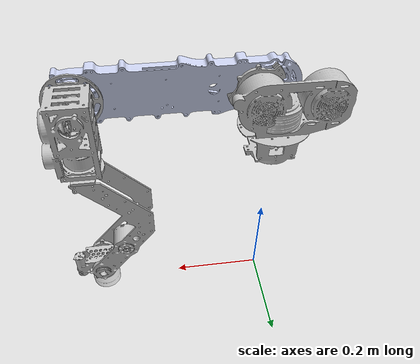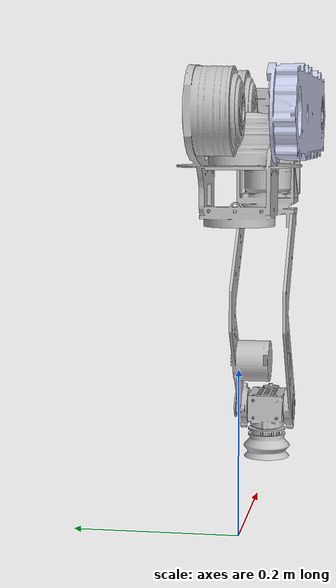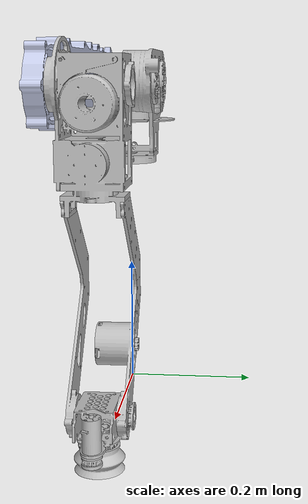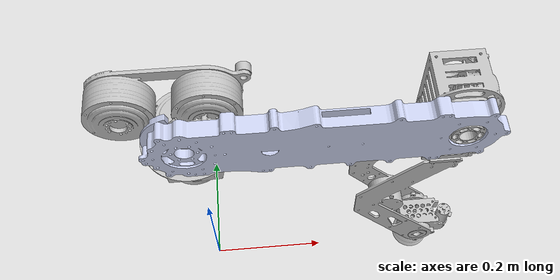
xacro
<?xml version="1.0"?>
<robot xmlns:xacro="http://www.ros.org/wiki/xacro" name="ARV_V1_MODEL">
    <xacro:arg name="initial_positions_file" default="initial_positions.yaml" />

    <!-- Import ARV_V1_MODEL urdf file -->
    <xacro:include filename="$(find ARV_V1_MODEL)/urdf/ARV_V1_MODEL.urdf" />

    <!-- Import control_xacro -->
    <xacro:include filename="ARV_V1_MODEL.ros2_control.xacro" />

    <!-- ros2_control 标签（使用 mock 硬件） -->
    <xacro:ARV_V1_MODEL_ros2_control name="FakeSystem" initial_positions_file="$(arg initial_positions_file)"/>

</robot>

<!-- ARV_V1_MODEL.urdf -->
<robot
  name="ARV_V1_MODEL">
  <link
    name="base_link">
    <inertial>
      <origin
        xyz="4.06405754959603E-05 3.96062265211095E-05 -0.159587611333419"
        rpy="0 0 0" />
      <mass
        value="0.349525984991482" />
      <inertia
        ixx="0.000258629195167638"
        ixy="-5.10875001154551E-10"
        ixz="-9.72936642265161E-09"
        iyy="0.000258276357567582"
        iyz="-1.14928164144097E-08"
        izz="0.000395519919318191" />
    </inertial>
    <visual>
      <origin
        xyz="0 0 0"
        rpy="0 0 0" />
      <geometry>
        <mesh
          filename="package://ARV_V1_MODEL/meshes/base_link.STL" />
      </geometry>
      <material
        name="">
        <color
          rgba="0.752941176470588 0.752941176470588 0.752941176470588 1" />
      </material>
    </visual>
    <collision>
      <origin
        xyz="0 0 0"
        rpy="0 0 0" />
      <geometry>
        <mesh
          filename="package://ARV_V1_MODEL/meshes/base_link.STL" />
      </geometry>
    </collision>
  </link>
  <link
    name="link1_double8009">
    <inertial>
      <origin
        xyz="-0.0154999931131982 -0.0261644185287386 -0.00790164285412044"
        rpy="0 0 0" />
      <mass
        value="1.22525961510696" />
      <inertia
        ixx="0.00126118311285525"
        ixy="-9.13199961592521E-06"
        ixz="-4.1718719896748E-07"
        iyy="0.00132467695230876"
        iyz="-1.19448129551972E-06"
        izz="0.00217005077700242" />
    </inertial>
    <visual>
      <origin
        xyz="0.03215 0 0"
        rpy="0 0 0" />
      <geometry>
        <mesh
          filename="package://ARV_V1_MODEL/meshes/link1_double8009.STL" />
      </geometry>
      <material
        name="">
        <color
          rgba="0.752941176470588 0.752941176470588 0.752941176470588 1" />
      </material>
    </visual>
    <collision>
      <origin
        xyz="0.03215 0 0"
        rpy="0 0 0" />
      <geometry>
        <mesh
          filename="package://ARV_V1_MODEL/meshes/link1_double8009.STL" />
      </geometry>
    </collision>
  </link>
  <joint
    name="joint_1"
    type="revolute">
    <origin
      xyz="0 0 0"
      rpy="1.5708 0 0" />
    <parent
      link="base_link" />
    <child
      link="link1_double8009" />
    <axis
      xyz="0 1 0" />
    <limit
      lower="-3.14"
      upper="3.14"
      effort="20"
      velocity="10.47" />
    <dynamics
      damping="0.1"
      friction="0.1" />
    <safety_controller
      soft_upper_limit="3.14"
      soft_lower_limit="-3.14"
      k_position="0"
      k_velocity="0" />
  </joint>
  <link
    name="link2_arm1">
    <inertial>
      <origin
        xyz="-0.207835302221211 -0.000992870986534305 0.0570377412581278"
        rpy="0 0 0" />
      <mass
        value="1.13036010199932" />
      <inertia
        ixx="0.00142587127922893"
        ixy="-2.22161961679192E-05"
        ixz="-6.82089241798511E-06"
        iyy="0.0161880134214926"
        iyz="-5.42767939874192E-06"
        izz="0.0175303272584084" />
    </inertial>
    <visual>
      <origin
        xyz="0.381 0 0"
        rpy="0 0 0" />
      <geometry>
        <mesh
          filename="package://ARV_V1_MODEL/meshes/link2_arm1.STL" />
      </geometry>
      <material
        name="">
        <color
          rgba="0.792156862745098 0.819607843137255 0.933333333333333 1" />
      </material>
    </visual>
    <collision>
      <origin
        xyz="0.381 0 0"
        rpy="0 0 0" />
      <geometry>
        <mesh
          filename="package://ARV_V1_MODEL/meshes/link2_arm1.STL" />
      </geometry>
    </collision>
  </link>
  <joint
    name="joint_2"
    type="revolute">
    <origin
      xyz="0 0 0"
      rpy="0 0 0" />
    <parent
      link="link1_double8009" />
    <child
      link="link2_arm1" />
    <axis
      xyz="0 0 1" />
    <limit
      lower="-3.14"
      upper="3.14"
      effort="20"
      velocity="10.47" />
    <dynamics
      damping="0.1"
      friction="0.1" />
    <safety_controller
      soft_upper_limit="3.14"
      soft_lower_limit="-3.14"
      k_position="0"
      k_velocity="0" />
  </joint>
  <link
    name="link3_sight">
    <inertial>
      <origin
        xyz="0.0106080099260035 -0.0536251640173155 0.0110704875938024"
        rpy="0 0 0" />
      <mass
        value="1.2559864019946" />
      <inertia
        ixx="0.00105270273008462"
        ixy="1.9169565264512E-06"
        ixz="1.70978398702773E-06"
        iyy="0.000830969442918397"
        iyz="2.32834239073742E-05"
        izz="0.00111734642942268" />
    </inertial>
    <visual>
      <origin
        xyz="0 0 0"
        rpy="0 0 0" />
      <geometry>
        <mesh
          filename="package://ARV_V1_MODEL/meshes/link3_sight.STL" />
      </geometry>
      <material
        name="">
        <color
          rgba="0.752941176470588 0.752941176470588 0.752941176470588 1" />
      </material>
    </visual>
    <collision>
      <origin
        xyz="0 0 0"
        rpy="0 0 0" />
      <geometry>
        <mesh
          filename="package://ARV_V1_MODEL/meshes/link3_sight.STL" />
      </geometry>
    </collision>
  </link>
  <joint
    name="joint_3"
    type="revolute">
    <origin
      xyz="0.381999999999996 0 -0.00719999999911157"
      rpy="0 0 0" />
    <parent
      link="link2_arm1" />
    <child
      link="link3_sight" />
    <axis
      xyz="0 0 -1" />
    <limit
      lower="-3.14"
      upper="3.14"
      effort="20"
      velocity="10.47" />
    <dynamics
      damping="0.1"
      friction="0.1" />
    <safety_controller
      soft_upper_limit="3.14"
      soft_lower_limit="-3.14"
      k_position="0"
      k_velocity="0" />
  </joint>
  <link
    name="link4_arm2">
    <inertial>
      <origin
        xyz="-0.0471747665346284 0.116147879122604 -0.00314898868309329"
        rpy="0 0 0" />
      <mass
        value="0.406159969500003" />
      <inertia
        ixx="0.00241397711452733"
        ixy="0.000109490600170552"
        ixz="-4.82806684024964E-08"
        iyy="0.000511634585525191"
        iyz="1.62319990296964E-07"
        izz="0.0029237195208925" />
    </inertial>
    <visual>
      <origin
        xyz="0 0 0"
        rpy="0 0 0" />
      <geometry>
        <mesh
          filename="package://ARV_V1_MODEL/meshes/link4_arm2.STL" />
      </geometry>
      <material
        name="">
        <color
          rgba="0.752941176470588 0.752941176470588 0.752941176470588 1" />
      </material>
    </visual>
    <collision>
      <origin
        xyz="0 0 0"
        rpy="0 0 0" />
      <geometry>
        <mesh
          filename="package://ARV_V1_MODEL/meshes/link4_arm2.STL" />
      </geometry>
    </collision>
  </link>
  <joint
    name="joint_4"
    type="revolute">
    <origin
      xyz="0 -0.418000000000065 0"
      rpy="0 0 0" />
    <parent
      link="link3_sight" />
    <child
      link="link4_arm2" />
    <axis
      xyz="0 -1 0" />
    <limit
      lower="-3.14"
      upper="3.14"
      effort="1.2"
      velocity="13.8" />
    <dynamics
      damping="0.1"
      friction="0.1" />
    <safety_controller
      soft_upper_limit="3.14"
      soft_lower_limit="-3.14"
      k_position="0"
      k_velocity="0" />
  </joint>
  <link
    name="link5_4310pitch">
    <inertial>
      <origin
        xyz="0.014937604120865 0.00443879636347264 0.00729204014938473"
        rpy="0 0 0" />
      <mass
        value="0.145781968714655" />
      <inertia
        ixx="2.16256229288805E-05"
        ixy="-9.21291007345439E-08"
        ixz="-6.09796294548116E-07"
        iyy="4.96762402972851E-05"
        iyz="-5.03475756685659E-10"
        izz="5.55815571281815E-05" />
    </inertial>
    <visual>
      <origin
        xyz="0 0 0"
        rpy="0 0 0" />
      <geometry>
        <mesh
          filename="package://ARV_V1_MODEL/meshes/link5_4310pitch.STL" />
      </geometry>
      <material
        name="">
        <color
          rgba="0.752941176470588 0.752941176470588 0.752941176470588 1" />
      </material>
    </visual>
    <collision>
      <origin
        xyz="0 0 0"
        rpy="0 0 0" />
      <geometry>
        <mesh
          filename="package://ARV_V1_MODEL/meshes/link5_4310pitch.STL" />
      </geometry>
    </collision>
  </link>
  <joint
    name="joint_5"
    type="revolute">
    <origin
      xyz="0 0 0"
      rpy="1.57079632679523 0 0" />
    <parent
      link="link4_arm2" />
    <child
      link="link5_4310pitch" />
    <axis
      xyz="0 1 0" />
    <limit
      lower="-3.14"
      upper="3.14"
      effort="7"
      velocity="10.47" />
    <dynamics
      damping="0.1"
      friction="0.1" />
    <safety_controller
      soft_upper_limit="3.14"
      soft_lower_limit="-3.14"
      k_position="0"
      k_velocity="0" />
  </joint>
  <link
    name="link6_2006roll">
    <inertial>
      <origin
        xyz="-2.23154827949656E-14 5.10702591327572E-15 -0.0119546936603161"
        rpy="0 0 0" />
      <mass
        value="0.114376166812813" />
      <inertia
        ixx="2.33675461159006E-05"
        ixy="-6.77008334816112E-14"
        ixz="3.01235029450962E-18"
        iyy="2.33675461861855E-05"
        iyz="-2.85317557316216E-19"
        izz="4.03700299739344E-05" />
    </inertial>
    <visual>
      <origin
        xyz="0 0 0"
        rpy="0 0 0" />
      <geometry>
        <mesh
          filename="package://ARV_V1_MODEL/meshes/link6_2006roll.STL" />
      </geometry>
      <material
        name="">
        <color
          rgba="0.752941176470588 0.752941176470588 0.752941176470588 1" />
      </material>
    </visual>
    <collision>
      <origin
        xyz="0 0 0"
        rpy="0 0 0" />
      <geometry>
        <mesh
          filename="package://ARV_V1_MODEL/meshes/link6_2006roll.STL" />
      </geometry>
    </collision>
  </link>
  <joint
    name="joint_6"
    type="revolute">
    <origin
      xyz="0 0 0.0518000000000047"
      rpy="0 0 -1.57079632679448" />
    <parent
      link="link5_4310pitch" />
    <child
      link="link6_2006roll" />
    <axis
      xyz="0 0 -1" />
    <limit
      lower="-3.14"
      upper="3.14"
      effort="1"
      velocity="10.47" />
    <dynamics
      damping="0.1"
      friction="0.1" />
    <safety_controller
      soft_upper_limit="3.14"
      soft_lower_limit="-3.14"
      k_position="0"
      k_velocity="0" />
  </joint>

  <!-- Gazebo 关节配置：启用力矩控制 -->
  <gazebo reference="joint_1">
    <implicitSpringDamper>false</implicitSpringDamper>
    <provideFeedback>true</provideFeedback>
  </gazebo>
  <gazebo reference="joint_2">
    <implicitSpringDamper>false</implicitSpringDamper>
    <provideFeedback>true</provideFeedback>
  </gazebo>
  <gazebo reference="joint_3">
    <implicitSpringDamper>false</implicitSpringDamper>
    <provideFeedback>true</provideFeedback>
  </gazebo>
  <gazebo reference="joint_4">
    <implicitSpringDamper>false</implicitSpringDamper>
    <provideFeedback>true</provideFeedback>
  </gazebo>
  <gazebo reference="joint_5">
    <implicitSpringDamper>false</implicitSpringDamper>
    <provideFeedback>true</provideFeedback>
  </gazebo>
  <gazebo reference="joint_6">
    <implicitSpringDamper>false</implicitSpringDamper>
    <provideFeedback>true</provideFeedback>
  </gazebo>

  <!-- 固定底座到世界坐标系，防止机械臂倒下 -->
  <link name="world"/>

  <joint name="world_fixed" type="fixed">
    <parent link="world"/>
    <child link="base_link"/>
    <origin xyz="0 0 0.5" rpy="0 0 0"/>  <!-- Z=0.5米，让底座在地面上方 -->
  </joint>

</robot>
